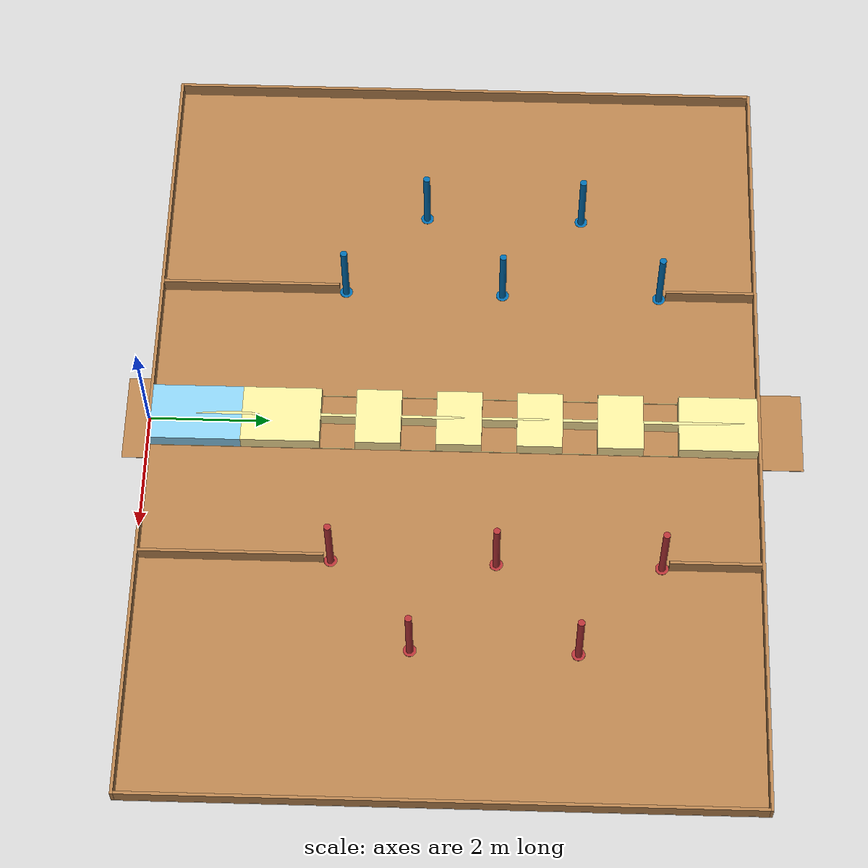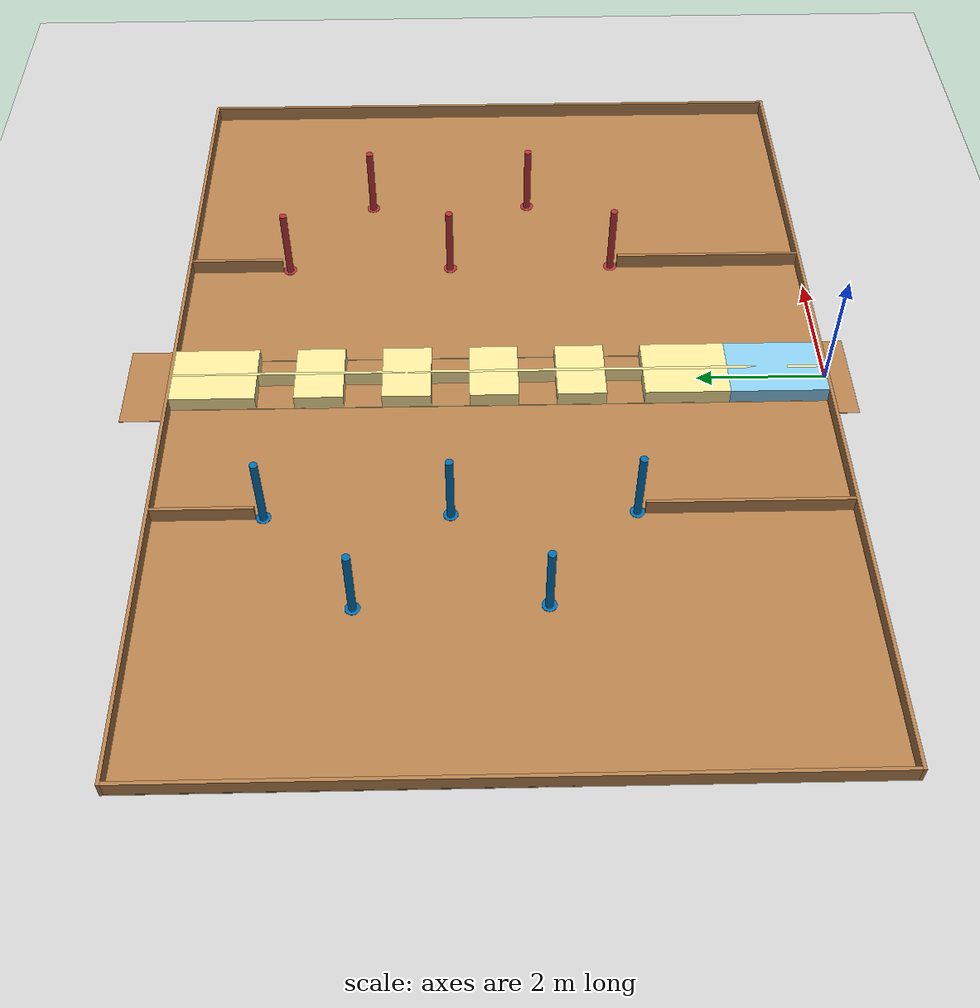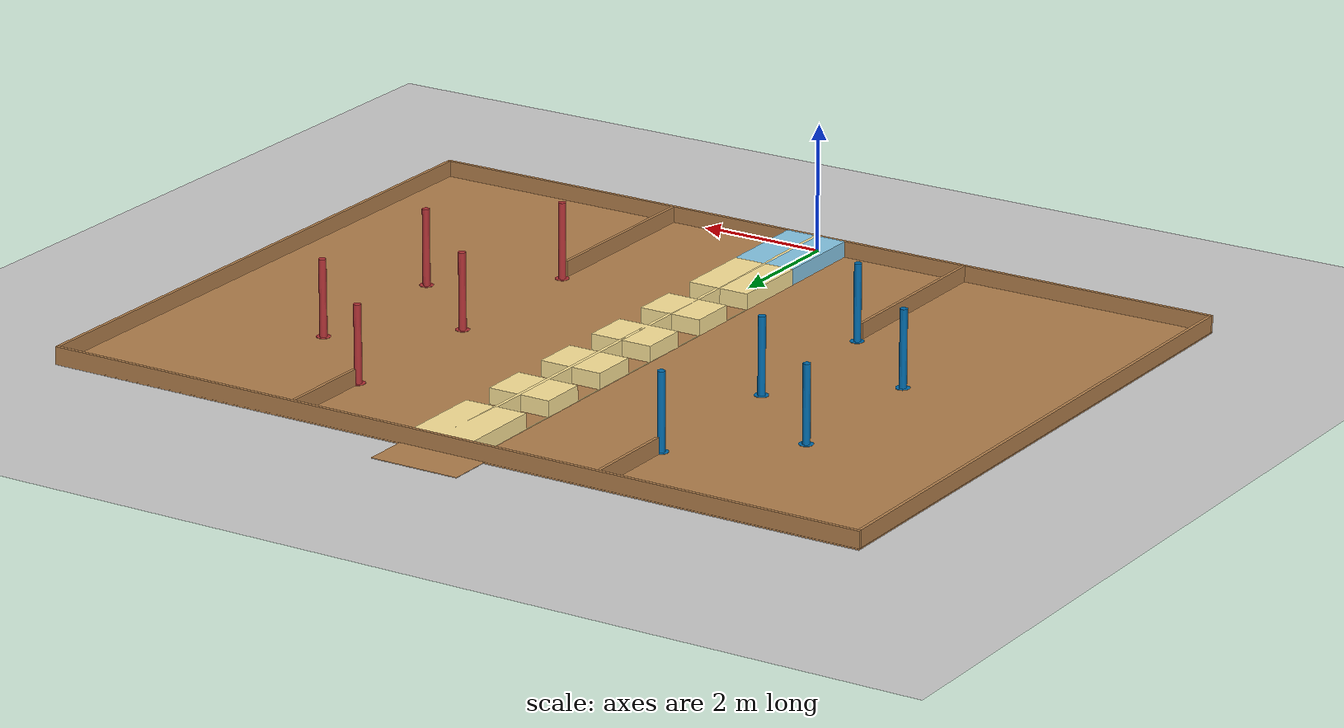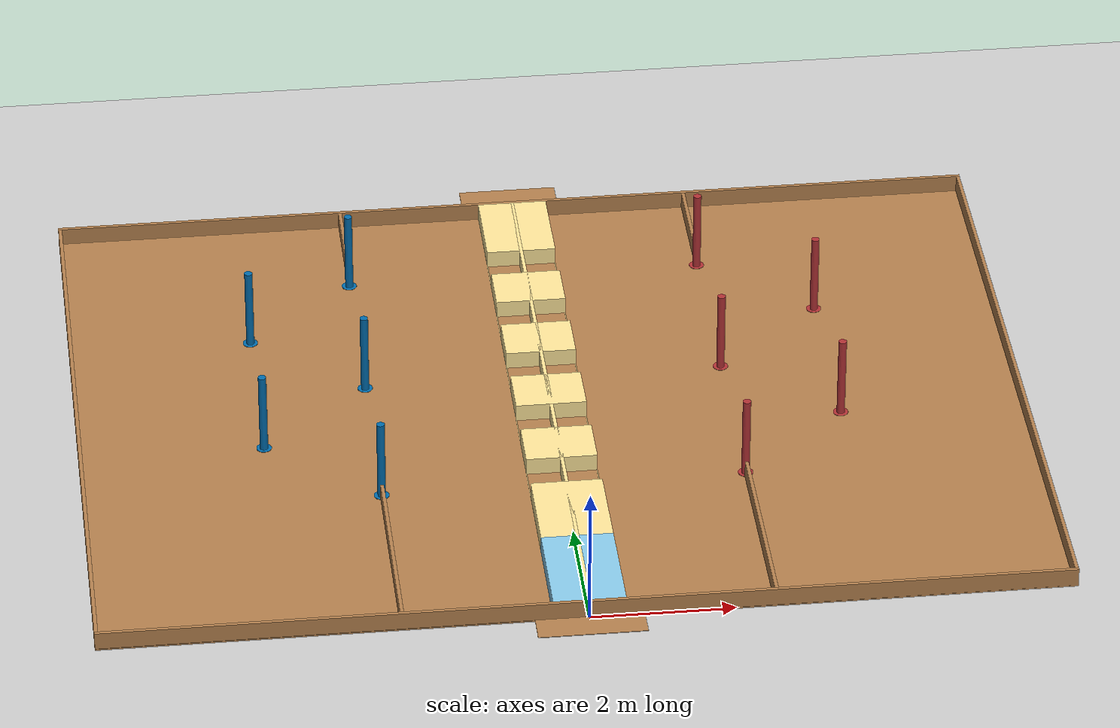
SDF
<?xml version="1.0" ?>
<sdf version="1.6">
  <world name="default">
    <physics type="ode">
      <real_time_update_rate>250</real_time_update_rate>
    </physics>
    <scene>
      <shadows>false</shadows>
    </scene>
    <include>
      <uri>model://sun</uri>
    </include>
    <include>
      <uri>model://ground_plane</uri>
    </include>
    <include>
      <uri>model://NHK2020</uri>
      <pose>6.7 0 0 0 0 1.57</pose>
    </include>
  </world>
</sdf>

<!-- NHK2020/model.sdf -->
<sdf version='1.6'>
	<model name='NHK2020'>
		<static>true</static>
		<pose>0 0 0 0 0 0</pose>
		<link name="base_link" />

		<link name="floor_main_link">
			<collision name="floor_main_collision">
				<pose>5.050 6.7 0.005 0 0 0</pose>
				<geometry>
					<box>
						<size>10.10 13.40 0.01</size>
					</box>
				</geometry>
			</collision>
			<visual name="floor_main_visual">
				<pose>5.050 6.7 0.005 0 0 0</pose>
				<geometry>
					<box>
						<size>10.10 13.40 0.01</size>
					</box>
				</geometry>
				<material>
					<script>
						<uri>file://media/materials/scripts/gazebo.material</uri>
						<name>Gazebo/Wood</name>
					</script>
					<ambient>1 1 1 1</ambient>
				</material>
				<meta>
					<layer>0</layer>
				</meta>
			</visual>
		</link>
		<link name="floor_goal_link">
			<collision name="floor_goal_collision">
				<pose>10.450 6.7 0.005 0 0 0</pose>
				<geometry>
					<box>
						<size>0.7 1.42 0.01</size>
					</box>
				</geometry>
			</collision>
			<visual name="floor_goal_visual">
				<pose>10.450 6.7 0.005 0 0 0</pose>
				<geometry>
					<box>
						<size>0.7 1.42 0.01</size>
					</box>
				</geometry>
				<material>
					<script>
						<uri>file://media/materials/scripts/gazebo.material</uri>
						<name>Gazebo/Wood</name>
					</script>
					<ambient>1 1 1 1</ambient>
				</material>
				<meta>
					<layer>0</layer>
				</meta>
			</visual>
		</link>
		<link name="floor_kickballrack_link">
			<collision name="floor_kickballrack_collision">
				<pose>-0.2 6.7 0.005 0 0 0</pose>
				<geometry>
					<box>
						<size>0.4 1.5 0.01</size>
					</box>
				</geometry>
			</collision>
			<visual name="floor_goal_visual">
				<pose>-0.2 6.7 0.005 0 0 0</pose>
				<geometry>
					<box>
						<size>0.4 1.5 0.01</size>
					</box>
				</geometry>
				<material>
					<script>
						<uri>file://media/materials/scripts/gazebo.material</uri>
						<name>Gazebo/Wood</name>
					</script>
					<ambient>1 1 1 1</ambient>
				</material>
				<meta>
					<layer>0</layer>
				</meta>
			</visual>
		</link>
		<link name="wall_blue_link">
			<collision name="wall_blue_collision">
				<pose>5.050 0.025 0.06 0 0 0</pose>
				<geometry>
					<box>
						<size>10 0.05 0.4</size>
					</box>
				</geometry>
			</collision>
			<visual name="wall_blue_visual">
				<pose>5.050 0.025 0.06 0 0 0</pose>
				<geometry>
					<box>
						<size>10 0.05 0.4</size>
					</box>
				</geometry>
				<material>
					<script>
						<uri>file://media/materials/scripts/gazebo.material</uri>
						<name>Gazebo/Wood</name>
					</script>
					<ambient>1 1 1 1</ambient>
				</material>
				<meta>
					<layer>0</layer>
				</meta>
			</visual>
		</link>
		<link name="wall_red_link">
			<collision name="wall_red_collision">
				<pose>5.050 13.375 0.06 0 0 0</pose>
				<geometry>
					<box>
						<size>10 0.05 0.4</size>
					</box>
				</geometry>
			</collision>
			<visual name="wall_red_visual">
				<pose>5.050 13.375 0.06 0 0 0</pose>
				<geometry>
					<box>
						<size>10 0.05 0.4</size>
					</box>
				</geometry>
				<material>
					<script>
						<uri>file://media/materials/scripts/gazebo.material</uri>
						<name>Gazebo/Wood</name>
					</script>
					<ambient>1 1 1 1</ambient>
				</material>
				<meta>
					<layer>0</layer>
				</meta>
			</visual>
		</link>
		<link name="wall_goal_link">
			<collision name="wall_goal_collision">
				<pose>10.075 6.7 0.06 0 0 0</pose>
				<geometry>
					<box>
						<size>0.05 13.400 0.4</size>
					</box>
				</geometry>
			</collision>
			<visual name="wall_goal_visual">
				<pose>10.075 6.7 0.06 0 0 0</pose>
				<geometry>
					<box>
						<size>0.05 13.400 0.4</size>
					</box>
				</geometry>
				<material>
					<script>
						<uri>file://media/materials/scripts/gazebo.material</uri>
						<name>Gazebo/Wood</name>
					</script>
					<ambient>1 1 1 1</ambient>
				</material>
				<meta>
					<layer>0</layer>
				</meta>
			</visual>
		</link>
		<link name="wall_rack_link">
			<collision name="wall_rack_collision">
				<pose>0.025 6.7 0.06 0 0 0</pose>
				<geometry>
					<box>
						<size>0.05 13.400 0.4</size>
					</box>
				</geometry>
			</collision>
			<visual name="wall_goal_visual">
				<pose>0.025 6.7 0.06 0 0 0</pose>
				<geometry>
					<box>
						<size>0.05 13.400 0.4</size>
					</box>
				</geometry>
				<material>
					<script>
						<uri>file://media/materials/scripts/gazebo.material</uri>
						<name>Gazebo/Wood</name>
					</script>
					<ambient>1 1 1 1</ambient>
				</material>
				<meta>
					<layer>0</layer>
				</meta>
			</visual>
		</link>
		<link name="wall_prsz_blue_link">
			<collision name="wall_prsz_blue_collision">
				<pose>1.5415 4.15 0.06 0 0 0</pose>
				<geometry>
					<box>
						<size>2.983 0.05 0.4</size>
					</box>
				</geometry>
			</collision>
			<visual name="wall_prsz_blue_visual">
				<pose>1.5415 4.15 0.06 0 0 0</pose>
				<geometry>
					<box>
						<size>2.983 0.05 0.4</size>
					</box>
				</geometry>
				<material>
					<script>
						<uri>file://media/materials/scripts/gazebo.material</uri>
						<name>Gazebo/Wood</name>
					</script>
					<ambient>1 1 1 1</ambient>
				</material>
				<meta>
					<layer>0</layer>
				</meta>
			</visual>
		</link>
		<link name="wall_prsz_red_link">
			<collision name="wall_prsz_red_collision">
				<pose>1.5415 9.250 0.06 0 0 0</pose>
				<geometry>
					<box>
						<size>2.983 0.05 0.4</size>
					</box>
				</geometry>
			</collision>
			<visual name="wall_prsz_red_visual">
				<pose>1.5415 9.250 0.06 0 0 0</pose>
				<geometry>
					<box>
						<size>2.983 0.05 0.4</size>
					</box>
				</geometry>
				<material>
					<script>
						<uri>file://media/materials/scripts/gazebo.material</uri>
						<name>Gazebo/Wood</name>
					</script>
					<ambient>1 1 1 1</ambient>
				</material>
				<meta>
					<layer>0</layer>
				</meta>
			</visual>
		</link>
		<link name="wall_trsz_blue_link">
			<collision name="wall_trsz_blue_collision">
				<pose>9.3085 4.15 0.06 0 0 0</pose>
				<geometry>
					<box>
						<size>1.483 0.05 0.4</size>
					</box>
				</geometry>
			</collision>
			<visual name="wall_trsz_blue_visual">
				<pose>9.3085 4.15 0.06 0 0 0</pose>
				<geometry>
					<box>
						<size>1.483 0.05 0.4</size>
					</box>
				</geometry>
				<material>
					<script>
						<uri>file://media/materials/scripts/gazebo.material</uri>
						<name>Gazebo/Wood</name>
					</script>
					<ambient>1 1 1 1</ambient>
				</material>
				<meta>
					<layer>0</layer>
				</meta>
			</visual>
		</link>
		<link name="wall_trsz_red_link">
			<collision name="wall_trsz_red_collision">
				<pose>9.3085 9.250 0.06 0 0 0</pose>
				<geometry>
					<box>
						<size>1.483 0.05 0.4</size>
					</box>
				</geometry>
			</collision>
			<visual name="wall_prsz_blue_visual">
				<pose>9.3085 9.250 0.06 0 0 0</pose>
				<geometry>
					<box>
						<size>1.483 0.05 0.4</size>
					</box>
				</geometry>
				<material>
					<script>
						<uri>file://media/materials/scripts/gazebo.material</uri>
						<name>Gazebo/Wood</name>
					</script>
					<ambient>1 1 1 1</ambient>
				</material>
				<meta>
					<layer>0</layer>
				</meta>
			</visual>
		</link>
		<link name="obj_tbrack_link">
			<collision name="obj_tbrack_collision">
				<pose>0.8 6.7 0.06 0 0 0</pose>
				<geometry>
					<box>
						<size>1.5 1.0 0.4</size>
					</box>
				</geometry>
			</collision>
			<visual name="obj_tbrack_visual">
				<pose>0.8 6.7 0.06 0 0 0</pose>
				<geometry>
					<box>
						<size>1.5 1.0 0.4</size>
					</box>
				</geometry>
				<material>
					<diffuse>0.5333 0.7922 0.9137 1</diffuse>
					<ambient>1 1 1 1</ambient>
				</material>
				<meta>
					<layer>0</layer>
				</meta>
			</visual>
		</link>
		<!-- count from rack -->
		<link name="obj_trspots0_link">
			<collision name="obj_trspots0_collision">
				<pose>2.2 6.7 0.06 0 0 0</pose>
				<geometry>
					<box>
						<size>1.3 1.0 0.4</size>
					</box>
				</geometry>
			</collision>
			<visual name="obj_trspots0_visual">
				<pose>2.2 6.7 0.06 0 0 0</pose>
				<geometry>
					<box>
						<size>1.3 1.0 0.4</size>
					</box>
				</geometry>
				<material>
					<diffuse>0.9922 0.8980 0.6 1</diffuse>
					<ambient>1 1 1 1</ambient>
				</material>
				<meta>
					<layer>0</layer>
				</meta>
			</visual>
		</link>
		<link name="obj_trspots1_link">
			<collision name="obj_trspots1_collision">
				<pose>3.805 6.7 0.06 0 0 0</pose>
				<geometry>
					<box>
						<size>0.75 1.0 0.4</size>
					</box>
				</geometry>
			</collision>
			<visual name="obj_trspots1_visual">
				<pose>3.805 6.7 0.06 0 0 0</pose>
				<geometry>
					<box>
						<size>0.75 1.0 0.4</size>
					</box>
				</geometry>
				<material>
					<diffuse>0.9922 0.8980 0.6 1</diffuse>
					<ambient>1 1 1 1</ambient>
				</material>
				<meta>
					<layer>0</layer>
				</meta>
			</visual>
		</link>
		<link name="obj_trspots2_link">
			<collision name="obj_trspots2_collision">
				<pose>5.135 6.7 0.06 0 0 0</pose>
				<geometry>
					<box>
						<size>0.75 1.0 0.4</size>
					</box>
				</geometry>
			</collision>
			<visual name="obj_trspots2_visual">
				<pose>5.135 6.7 0.06 0 0 0</pose>
				<geometry>
					<box>
						<size>0.75 1.0 0.4</size>
					</box>
				</geometry>
				<material>
					<diffuse>0.9922 0.8980 0.6 1</diffuse>
					<ambient>1 1 1 1</ambient>
				</material>
				<meta>
					<layer>0</layer>
				</meta>
			</visual>
		</link>
		<link name="obj_trspots3_link">
			<collision name="obj_trspots3_collision">
				<pose>6.465 6.7 0.06 0 0 0</pose>
				<geometry>
					<box>
						<size>0.75 1.0 0.4</size>
					</box>
				</geometry>
			</collision>
			<visual name="obj_trspots3_visual">
				<pose>6.465 6.7 0.06 0 0 0</pose>
				<geometry>
					<box>
						<size>0.75 1.0 0.4</size>
					</box>
				</geometry>
				<material>
					<diffuse>0.9922 0.8980 0.6 1</diffuse>
					<ambient>1 1 1 1</ambient>
				</material>
				<meta>
					<layer>0</layer>
				</meta>
			</visual>
		</link>
		<link name="obj_trspots4_link">
			<collision name="obj_trspots4_collision">
				<pose>7.795 6.7 0.06 0 0 0</pose>
				<geometry>
					<box>
						<size>0.75 1.0 0.4</size>
					</box>
				</geometry>
			</collision>
			<visual name="obj_trspots4_visual">
				<pose>7.795 6.7 0.06 0 0 0</pose>
				<geometry>
					<box>
						<size>0.75 1.0 0.4</size>
					</box>
				</geometry>
				<material>
					<diffuse>0.9922 0.8980 0.6 1</diffuse>
					<ambient>1 1 1 1</ambient>
				</material>
				<meta>
					<layer>0</layer>
				</meta>
			</visual>
		</link>
		<link name="obj_trspots5_link">
			<collision name="obj_trspots5_collision">
				<pose>9.4 6.7 0.06 0 0 0</pose>
				<geometry>
					<box>
						<size>1.3 1.0 0.4</size>
					</box>
				</geometry>
			</collision>
			<visual name="obj_trspots4_visual">
				<pose>9.4 6.7 0.06 0 0 0</pose>
				<geometry>
					<box>
						<size>1.3 1.0 0.4</size>
					</box>
				</geometry>
				<material>
					<diffuse>0.9922 0.8980 0.6 1</diffuse>
					<ambient>1 1 1 1</ambient>
				</material>
				<meta>
					<layer>0</layer>
				</meta>
			</visual>
		</link>
		<link name="obj_bar_link">
			<collision name="obj_bar_collision">
				<pose>5.050 6.7 0.06 0 0 0</pose>
				<geometry>
					<box>
						<size>10 0.05 0.4</size>
					</box>
				</geometry>
			</collision>
			<visual name="obj_bar_visual">
				<pose>5.050 6.7 0.06 0 0 0</pose>
				<geometry>
					<box>
						<size>10 0.05 0.4</size>
					</box>
				</geometry>
				<material>
					<diffuse>0.9922 0.8980 0.6 1</diffuse>
					<ambient>1 1 1 1</ambient>
				</material>
				<meta>
					<layer>0</layer>
				</meta>
			</visual>
		</link>
		<link name="obj_steeltube_blue_link">
			<collision name="obj_steeltube_blue_collision">
				<pose>5.050 6.205 0.015 0 0 0</pose>
				<geometry>
					<box>
						<size>10 0.01 0.01</size>
					</box>
				</geometry>
			</collision>
			<visual name="obj_steeltube_blue_visual">
				<pose>5.050 6.205 0.015 0 0 0</pose>
				<geometry>
					<box>
						<size>10 0.01 0.01</size>
					</box>
				</geometry>
				<material>
					<diffuse>0.9922 0.8980 0.6 1</diffuse>
					<ambient>1 1 1 1</ambient>
				</material>
				<meta>
					<layer>0</layer>
				</meta>
			</visual>
		</link>
		<link name="obj_steeltube_red_link">
			<collision name="obj_steeltube_red_collision">
				<pose>5.050 7.195 0.015 0 0 0</pose>
				<geometry>
					<box>
						<size>10 0.01 0.01</size>
					</box>
				</geometry>
			</collision>
			<visual name="obj_steeltube_red_visual">
				<pose>5.050 7.195 0.015 0 0 0</pose>
				<geometry>
					<box>
						<size>10 0.01 0.01</size>
					</box>
				</geometry>
				<material>
					<diffuse>0.9922 0.8980 0.6 1</diffuse>
					<ambient>1 1 1 1</ambient>
				</material>
				<meta>
					<layer>0</layer>
				</meta>
			</visual>
		</link>
		<!-- count from rack side -->
		<!-- if you want to rotate poll, you should change wing yaw -->
		<link name="obj_obstacle_blue0_link">
			<collision name="obj_obstacle_blue0_bottom_collision">
				<pose>3.140 4.15 0.013 0 0 0</pose>
				<geometry>
					<cylinder>
						<radius>0.107</radius>
						<length>0.006</length>
					</cylinder>
				</geometry>
			</collision>
			<visual name="obj_obstacle_blue0_bottom_visual">
				<pose>3.140 4.15 0.013 0 0 0</pose>
				<geometry>
					<cylinder>
						<radius>0.107</radius>
						<length>0.006</length>
					</cylinder>
				</geometry>
				<material>
					<diffuse>0.6902 0.1922 0.2078 1</diffuse>
					<ambient>1 1 1 1</ambient>
				</material>
				<meta>
					<layer>0</layer>
				</meta>
			</visual>
			<collision name="obj_obstacle_blue0_poll_collision">
				<pose>3.140 4.15 0.61 0 0 0</pose>
				<geometry>
					<cylinder>
						<radius>0.057</radius>
						<length>1.2</length>
					</cylinder>
				</geometry>
			</collision>
			<visual name="obj_obstacle_blue0_poll_visual">
				<pose>3.140 4.15 0.61 0 0 0</pose>
				<geometry>
					<cylinder>
						<radius>0.057</radius>
						<length>1.2</length>
					</cylinder>
				</geometry>
				<material>
					<diffuse>0.6902 0.1922 0.2078 1</diffuse>
					<ambient>1 1 1 1</ambient>
				</material>
				<meta>
					<layer>0</layer>
				</meta>
			</visual>
		</link>
		<link name="obj_obstacle_blue1_link">
			<collision name="obj_obstacle_blue1_bottom_collision">
				<pose>4.470 2.610 0.013 0 0 0</pose>
				<geometry>
					<cylinder>
						<radius>0.107</radius>
						<length>0.006</length>
					</cylinder>
				</geometry>
			</collision>
			<visual name="obj_obstacle_blue1_bottom_visual">
				<pose>4.470 2.610 0.013 0 0 0</pose>
				<geometry>
					<cylinder>
						<radius>0.107</radius>
						<length>0.006</length>
					</cylinder>
				</geometry>
				<material>
					<diffuse>0.6902 0.1922 0.2078 1</diffuse>
					<ambient>1 1 1 1</ambient>
				</material>
				<meta>
					<layer>0</layer>
				</meta>
			</visual>
			<collision name="obj_obstacle_blue1_poll_collision">
				<pose>4.470 2.610 0.61 0 0 0</pose>
				<geometry>
					<cylinder>
						<radius>0.057</radius>
						<length>1.2</length>
					</cylinder>
				</geometry>
			</collision>
			<visual name="obj_obstacle_blue1_poll_visual">
				<pose>4.470 2.610 0.61 0 0 0</pose>
				<geometry>
					<cylinder>
						<radius>0.057</radius>
						<length>1.2</length>
					</cylinder>
				</geometry>
				<material>
					<diffuse>0.6902 0.1922 0.2078 1</diffuse>
					<ambient>1 1 1 1</ambient>
				</material>
				<meta>
					<layer>0</layer>
				</meta>
			</visual>
		</link>
		<link name="obj_obstacle_blue2_link">
			<collision name="obj_obstacle_blue2_bottom_collision">
				<pose>5.80 4.15 0.013 0 0 0</pose>
				<geometry>
					<cylinder>
						<radius>0.107</radius>
						<length>0.006</length>
					</cylinder>
				</geometry>
			</collision>
			<visual name="obj_obstacle_blue2_bottom_visual">
				<pose>5.80 4.15 0.013 0 0 0</pose>
				<geometry>
					<cylinder>
						<radius>0.107</radius>
						<length>0.006</length>
					</cylinder>
				</geometry>
				<material>
					<diffuse>0.6902 0.1922 0.2078 1</diffuse>
					<ambient>1 1 1 1</ambient>
				</material>
				<meta>
					<layer>0</layer>
				</meta>
			</visual>
			<collision name="obj_obstacle_blue2_poll_collision">
				<pose>5.80 4.15 0.61 0 0 0</pose>
				<geometry>
					<cylinder>
						<radius>0.057</radius>
						<length>1.2</length>
					</cylinder>
				</geometry>
			</collision>
			<visual name="obj_obstacle_blue2_poll_visual">
				<pose>5.80 4.15 0.61 0 0 0</pose>
				<geometry>
					<cylinder>
						<radius>0.057</radius>
						<length>1.2</length>
					</cylinder>
				</geometry>
				<material>
					<diffuse>0.6902 0.1922 0.2078 1</diffuse>
					<ambient>1 1 1 1</ambient>
				</material>
				<meta>
					<layer>0</layer>
				</meta>
			</visual>
		</link>
		<link name="obj_obstacle_blue3_link">
			<collision name="obj_obstacle_blue3_bottom_collision">
				<pose>7.130 2.610 0.013 0 0 0</pose>
				<geometry>
					<cylinder>
						<radius>0.107</radius>
						<length>0.006</length>
					</cylinder>
				</geometry>
			</collision>
			<visual name="obj_obstacle_blue3_bottom_visual">
				<pose>7.130 2.610 0.013 0 0 0</pose>
				<geometry>
					<cylinder>
						<radius>0.107</radius>
						<length>0.006</length>
					</cylinder>
				</geometry>
				<material>
					<diffuse>0.6902 0.1922 0.2078 1</diffuse>
					<ambient>1 1 1 1</ambient>
				</material>
				<meta>
					<layer>0</layer>
				</meta>
			</visual>
			<collision name="obj_obstacle_blue3_poll_collision">
				<pose>7.130 2.610 0.61 0 0 0</pose>
				<geometry>
					<cylinder>
						<radius>0.057</radius>
						<length>1.2</length>
					</cylinder>
				</geometry>
			</collision>
			<visual name="obj_obstacle_blue3_poll_visual">
				<pose>7.130 2.610 0.61 0 0 0</pose>
				<geometry>
					<cylinder>
						<radius>0.057</radius>
						<length>1.2</length>
					</cylinder>
				</geometry>
				<material>
					<diffuse>0.6902 0.1922 0.2078 1</diffuse>
					<ambient>1 1 1 1</ambient>
				</material>
				<meta>
					<layer>0</layer>
				</meta>
			</visual>
		</link>
		<link name="obj_obstacle_blue4_link">
			<collision name="obj_obstacle_blue4_bottom_collision">
				<pose>8.460 4.15 0.013 0 0 0</pose>
				<geometry>
					<cylinder>
						<radius>0.107</radius>
						<length>0.006</length>
					</cylinder>
				</geometry>
			</collision>
			<visual name="obj_obstacle_blue4_bottom_visual">
				<pose>8.460 4.15 0.013 0 0 0</pose>
				<geometry>
					<cylinder>
						<radius>0.107</radius>
						<length>0.006</length>
					</cylinder>
				</geometry>
				<material>
					<diffuse>0.6902 0.1922 0.2078 1</diffuse>
					<ambient>1 1 1 1</ambient>
				</material>
				<meta>
					<layer>0</layer>
				</meta>
			</visual>
			<collision name="obj_obstacle_blue4_poll_collision">
				<pose>8.460 4.15 0.61 0 0 0</pose>
				<geometry>
					<cylinder>
						<radius>0.057</radius>
						<length>1.2</length>
					</cylinder>
				</geometry>
			</collision>
			<visual name="obj_obstacle_blue4_poll_visual">
				<pose>8.460 4.15 0.61 0 0 0</pose>
				<geometry>
					<cylinder>
						<radius>0.057</radius>
						<length>1.2</length>
					</cylinder>
				</geometry>
				<material>
					<diffuse>0.6902 0.1922 0.2078 1</diffuse>
					<ambient>1 1 1 1</ambient>
				</material>
				<meta>
					<layer>0</layer>
				</meta>
			</visual>
		</link>
		<link name="obj_obstacle_red0_link">
			<collision name="obj_obstacle_red0_bottom_collision">
				<pose>3.140 9.25 0.013 0 0 0</pose>
				<geometry>
					<cylinder>
						<radius>0.107</radius>
						<length>0.006</length>
					</cylinder>
				</geometry>
			</collision>
			<visual name="obj_obstacle_red0_bottom_visual">
				<pose>3.140 9.25 0.013 0 0 0</pose>
				<geometry>
					<cylinder>
						<radius>0.107</radius>
						<length>0.006</length>
					</cylinder>
				</geometry>
				<material>
					<diffuse>0 0.4196 0.67450 1</diffuse>
					<ambient>1 1 1 1</ambient>
				</material>
				<meta>
					<layer>0</layer>
				</meta>
			</visual>
			<collision name="obj_obstacle_red0_poll_collision">
				<pose>3.140 9.250 0.61 0 0 0</pose>
				<geometry>
					<cylinder>
						<radius>0.057</radius>
						<length>1.2</length>
					</cylinder>
				</geometry>
			</collision>
			<visual name="obj_obstacle_red0_poll_visual">
				<pose>3.140 9.250 0.61 0 0 0</pose>
				<geometry>
					<cylinder>
						<radius>0.057</radius>
						<length>1.2</length>
					</cylinder>
				</geometry>
				<material>
					<diffuse>0 0.4196 0.67450 1</diffuse>
					<ambient>1 1 1 1</ambient>
				</material>
				<meta>
					<layer>0</layer>
				</meta>
			</visual>
		</link>
		<link name="obj_obstacle_red1_link">
			<collision name="obj_obstacle_red1_bottom_collision">
				<pose>4.470 10.790 0.013 0 0 0</pose>
				<geometry>
					<cylinder>
						<radius>0.107</radius>
						<length>0.006</length>
					</cylinder>
				</geometry>
			</collision>
			<visual name="obj_obstacle_red1_bottom_visual">
				<pose>4.470 10.790 0.013 0 0 0</pose>
				<geometry>
					<cylinder>
						<radius>0.107</radius>
						<length>0.006</length>
					</cylinder>
				</geometry>
				<material>
					<diffuse>0 0.4196 0.67450 1</diffuse>
					<ambient>1 1 1 1</ambient>
				</material>
				<meta>
					<layer>0</layer>
				</meta>
			</visual>
			<collision name="obj_obstacle_red1_poll_collision">
				<pose>4.470 10.790 0.61 0 0 0</pose>
				<geometry>
					<cylinder>
						<radius>0.057</radius>
						<length>1.2</length>
					</cylinder>
				</geometry>
			</collision>
			<visual name="obj_obstacle_red1_poll_visual">
				<pose>4.470 10.790 0.61 0 0 0</pose>
				<geometry>
					<cylinder>
						<radius>0.057</radius>
						<length>1.2</length>
					</cylinder>
				</geometry>
				<material>
					<diffuse>0 0.4196 0.67450 1</diffuse>
					<ambient>1 1 1 1</ambient>
				</material>
				<meta>
					<layer>0</layer>
				</meta>
			</visual>
		</link>
		<link name="obj_obstacle_red2_link">
			<collision name="obj_obstacle_red2_bottom_collision">
				<pose>5.80 9.250 0.013 0 0 0</pose>
				<geometry>
					<cylinder>
						<radius>0.107</radius>
						<length>0.006</length>
					</cylinder>
				</geometry>
			</collision>
			<visual name="obj_obstacle_red2_bottom_visual">
				<pose>5.80 9.250 0.013 0 0 0</pose>
				<geometry>
					<cylinder>
						<radius>0.107</radius>
						<length>0.006</length>
					</cylinder>
				</geometry>
				<material>
					<diffuse>0 0.4196 0.67450 1</diffuse>
					<ambient>1 1 1 1</ambient>
				</material>
				<meta>
					<layer>0</layer>
				</meta>
			</visual>
			<collision name="obj_obstacle_red2_poll_collision">
				<pose>5.80 9.250 0.61 0 0 0</pose>
				<geometry>
					<cylinder>
						<radius>0.057</radius>
						<length>1.2</length>
					</cylinder>
				</geometry>
			</collision>
			<visual name="obj_obstacle_red2_poll_visual">
				<pose>5.80 9.250 0.61 0 0 0</pose>
				<geometry>
					<cylinder>
						<radius>0.057</radius>
						<length>1.2</length>
					</cylinder>
				</geometry>
				<material>
					<diffuse>0 0.4196 0.67450 1</diffuse>
					<ambient>1 1 1 1</ambient>
				</material>
				<meta>
					<layer>0</layer>
				</meta>
			</visual>
		</link>
		<link name="obj_obstacle_red3_link">
			<collision name="obj_obstacle_red3_bottom_collision">
				<pose>7.130 10.790 0.013 0 0 0</pose>
				<geometry>
					<cylinder>
						<radius>0.107</radius>
						<length>0.006</length>
					</cylinder>
				</geometry>
			</collision>
			<visual name="obj_obstacle_red3_bottom_visual">
				<pose>7.130 10.790 0.013 0 0 0</pose>
				<geometry>
					<cylinder>
						<radius>0.107</radius>
						<length>0.006</length>
					</cylinder>
				</geometry>
				<material>
					<diffuse>0 0.4196 0.67450 1</diffuse>
					<ambient>1 1 1 1</ambient>
				</material>
				<meta>
					<layer>0</layer>
				</meta>
			</visual>
			<collision name="obj_obstacle_red3_poll_collision">
				<pose>7.130 10.790 0.61 0 0 0</pose>
				<geometry>
					<cylinder>
						<radius>0.057</radius>
						<length>1.2</length>
					</cylinder>
				</geometry>
			</collision>
			<visual name="obj_obstacle_red3_poll_visual">
				<pose>7.130 10.790 0.61 0 0 0</pose>
				<geometry>
					<cylinder>
						<radius>0.057</radius>
						<length>1.2</length>
					</cylinder>
				</geometry>
				<material>
					<diffuse>0 0.4196 0.67450 1</diffuse>
					<ambient>1 1 1 1</ambient>
				</material>
				<meta>
					<layer>0</layer>
				</meta>
			</visual>
		</link>
		<link name="obj_obstacle_red4_link">
			<collision name="obj_obstacle_red4_bottom_collision">
				<pose>8.460 9.250 0.013 0 0 0</pose>
				<geometry>
					<cylinder>
						<radius>0.107</radius>
						<length>0.006</length>
					</cylinder>
				</geometry>
			</collision>
			<visual name="obj_obstacle_red4_bottom_visual">
				<pose>8.460 9.250 0.013 0 0 0</pose>
				<geometry>
					<cylinder>
						<radius>0.107</radius>
						<length>0.006</length>
					</cylinder>
				</geometry>
				<material>
					<diffuse>0 0.4196 0.67450 1</diffuse>
					<ambient>1 1 1 1</ambient>
				</material>
				<meta>
					<layer>0</layer>
				</meta>
			</visual>
			<collision name="obj_obstacle_red4_poll_collision">
				<pose>8.460 9.250 0.61 0 0 0</pose>
				<geometry>
					<cylinder>
						<radius>0.057</radius>
						<length>1.2</length>
					</cylinder>
				</geometry>
			</collision>
			<visual name="obj_obstacle_red4_poll_visual">
				<pose>8.460 9.250 0.61 0 0 0</pose>
				<geometry>
					<cylinder>
						<radius>0.057</radius>
						<length>1.2</length>
					</cylinder>
				</geometry>
				<material>
					<diffuse>0 0.4196 0.67450 1</diffuse>
					<ambient>1 1 1 1</ambient>
				</material>
				<meta>
					<layer>0</layer>
				</meta>
			</visual>
		</link>
	</model>
</sdf>
